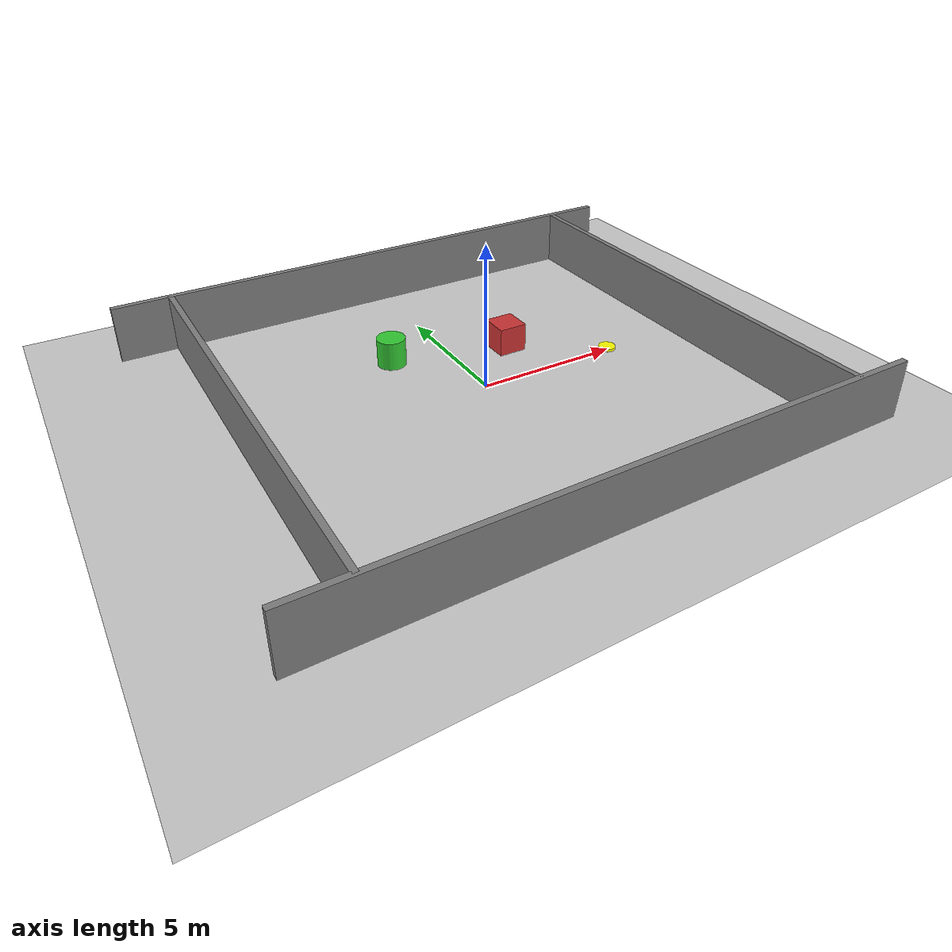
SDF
<?xml version="1.0" ?>
<sdf version="1.6">
  <world name="sample_robot_world">

    <!-- 全局设置 -->
    <physics name="default_physics" default="0" type="ignored">
      <real_time_update_rate>1000.0</real_time_update_rate>
      <max_step_size>0.001</max_step_size>
      <real_time_factor>1</real_time_factor>
    </physics>

    <!-- 地面 -->
    <model name="ground_plane">
      <static>true</static>
      <link name="link">
        <collision name="collision">
          <geometry>
            <plane>
              <normal>0 0 1</normal>
              <size>100 100</size>
            </plane>
          </geometry>
        </collision>
        <visual name="visual">
          <geometry>
            <plane>
              <normal>0 0 1</normal>
              <size>100 100</size>
            </plane>
          </geometry>
          <material>
            <ambient>0.8 0.8 0.8 1</ambient>
            <diffuse>0.8 0.8 0.8 1</diffuse>
            <specular>0.8 0.8 0.8 1</specular>
          </material>
        </visual>
      </link>
    </model>

    <!-- 障碍物 - 立方体 -->
    <model name="obstacle_box_1">
      <pose>2 2 0.5 0 0 0</pose>
      <static>true</static>
      <link name="link">
        <collision name="collision">
          <geometry>
            <box>
              <size>1 1 1</size>
            </box>
          </geometry>
        </collision>
        <visual name="visual">
          <geometry>
            <box>
              <size>1 1 1</size>
            </box>
          </geometry>
          <material>
            <ambient>0.8 0.2 0.2 1</ambient>
            <diffuse>0.8 0.2 0.2 1</diffuse>
            <specular>0.8 0.2 0.2 1</specular>
          </material>
        </visual>
      </link>
    </model>

    <!-- 障碍物 - 圆柱体 -->
    <model name="obstacle_cylinder_1">
      <pose>-2 3 0.5 0 0 0</pose>
      <static>true</static>
      <link name="link">
        <collision name="collision">
          <geometry>
            <cylinder>
              <radius>0.5</radius>
              <length>1</length>
            </cylinder>
          </geometry>
        </collision>
        <visual name="visual">
          <geometry>
            <cylinder>
              <radius>0.5</radius>
              <length>1</length>
            </cylinder>
          </geometry>
          <material>
            <ambient>0.2 0.8 0.2 1</ambient>
            <diffuse>0.2 0.8 0.2 1</diffuse>
            <specular>0.2 0.8 0.2 1</specular>
          </material>
        </visual>
      </link>
    </model>

    <!-- 目标点标记 -->
    <model name="target_marker">
      <pose>5 0 0.1 0 0 0</pose>
      <static>true</static>
      <link name="link">
        <visual name="visual">
          <geometry>
            <cylinder>
              <radius>0.3</radius>
              <length>0.1</length>
            </cylinder>
          </geometry>
          <material>
            <ambient>1 1 0 1</ambient>
            <diffuse>1 1 0 1</diffuse>
            <specular>1 1 0 1</specular>
          </material>
        </visual>
      </link>
    </model>

    <!-- 墙壁 -->
    <model name="wall_north">
      <pose>0 8 1 0 0 0</pose>
      <static>true</static>
      <link name="link">
        <collision name="collision">
          <geometry>
            <box>
              <size>20 0.2 2</size>
            </box>
          </geometry>
        </collision>
        <visual name="visual">
          <geometry>
            <box>
              <size>20 0.2 2</size>
            </box>
          </geometry>
          <material>
            <ambient>0.5 0.5 0.5 1</ambient>
            <diffuse>0.5 0.5 0.5 1</diffuse>
            <specular>0.5 0.5 0.5 1</specular>
          </material>
        </visual>
      </link>
    </model>

    <model name="wall_south">
      <pose>0 -8 1 0 0 0</pose>
      <static>true</static>
      <link name="link">
        <collision name="collision">
          <geometry>
            <box>
              <size>20 0.2 2</size>
            </box>
          </geometry>
        </collision>
        <visual name="visual">
          <geometry>
            <box>
              <size>20 0.2 2</size>
            </box>
          </geometry>
          <material>
            <ambient>0.5 0.5 0.5 1</ambient>
            <diffuse>0.5 0.5 0.5 1</diffuse>
            <specular>0.5 0.5 0.5 1</specular>
          </material>
        </visual>
      </link>
    </model>

    <model name="wall_east">
      <pose>8 0 1 0 0 0</pose>
      <static>true</static>
      <link name="link">
        <collision name="collision">
          <geometry>
            <box>
              <size>0.2 16 2</size>
            </box>
          </geometry>
        </collision>
        <visual name="visual">
          <geometry>
            <box>
              <size>0.2 16 2</size>
            </box>
          </geometry>
          <material>
            <ambient>0.5 0.5 0.5 1</ambient>
            <diffuse>0.5 0.5 0.5 1</diffuse>
            <specular>0.5 0.5 0.5 1</specular>
          </material>
        </visual>
      </link>
    </model>

    <model name="wall_west">
      <pose>-8 0 1 0 0 0</pose>
      <static>true</static>
      <link name="link">
        <collision name="collision">
          <geometry>
            <box>
              <size>0.2 16 2</size>
            </box>
          </geometry>
        </collision>
        <visual name="visual">
          <geometry>
            <box>
              <size>0.2 16 2</size>
            </box>
          </geometry>
          <material>
            <ambient>0.5 0.5 0.5 1</ambient>
            <diffuse>0.5 0.5 0.5 1</diffuse>
            <specular>0.5 0.5 0.5 1</specular>
          </material>
        </visual>
      </link>
    </model>

    <!-- 插件配置 -->
    <plugin name="gz::sim::systems::Physics" filename="gz-sim-physics-system">
    </plugin>

    <plugin name="gz::sim::systems::UserCommands" filename="gz-sim-user-commands-system">
    </plugin>

    <plugin name="gz::sim::systems::Sensors" filename="gz-sim-sensors-system">
      <render_engine>ogre2</render_engine>
    </plugin>

    <plugin name="gz::sim::systems::Imu" filename="gz-sim-imu-system">
    </plugin>

    <plugin name="gz::sim::systems::Contact" filename="gz-sim-contact-system">
    </plugin>

  </world>
</sdf>
